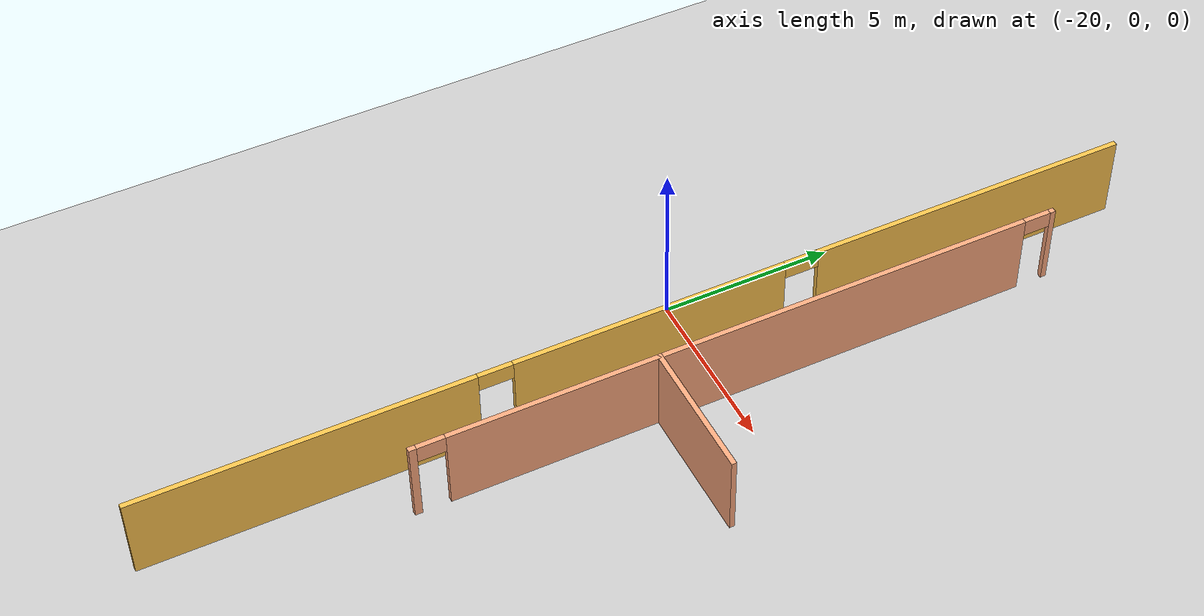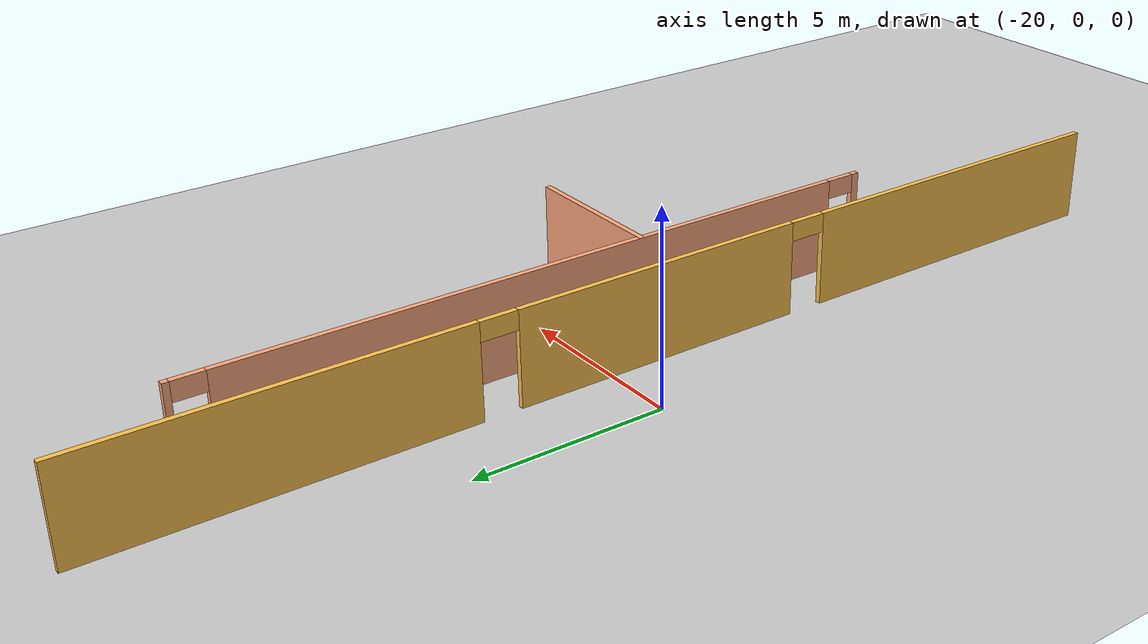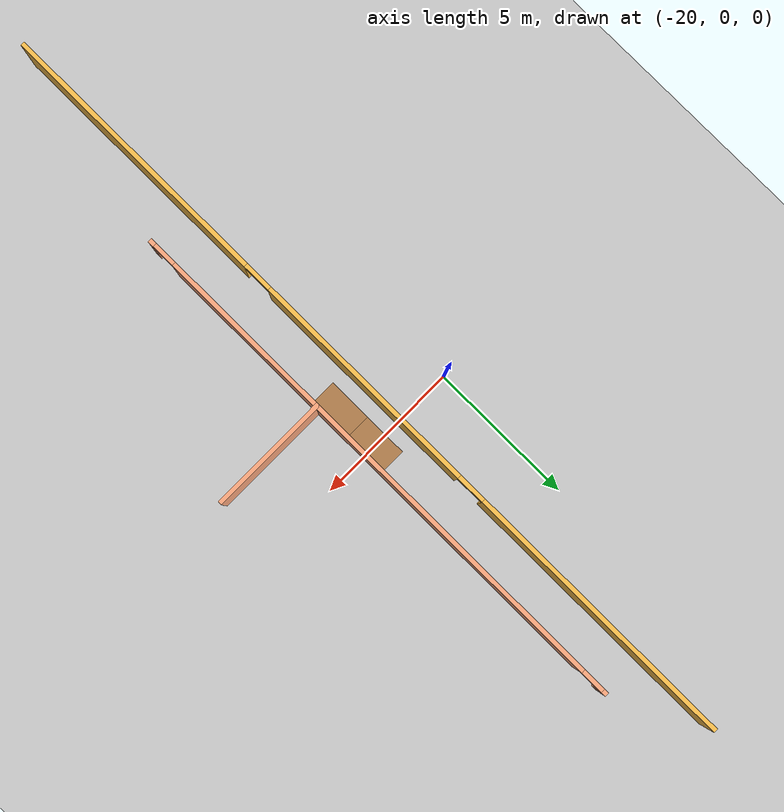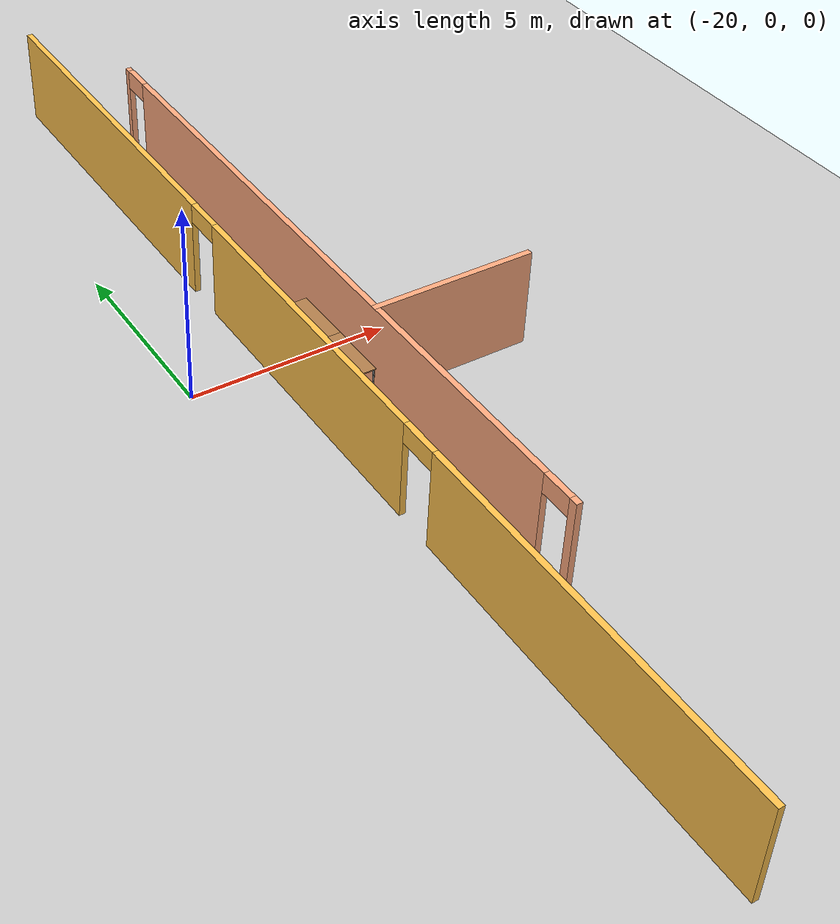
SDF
<sdf version="1.6">
 <world name="default">
  <model name="ground_plane">
   <static>1</static>
   <link name="link">
    <collision name="collision">
     <geometry><plane><normal>0 0 1</normal><size>100 100</size></plane></geometry>
     <surface><friction><ode><mu>100</mu><mu2>50</mu2></ode></friction></surface>
    </collision>
    <visual name="visual">
     <cast_shadows>0</cast_shadows>
     <geometry><plane><normal>0 0 1</normal><size>100 100</size></plane></geometry>
     <material>
      <script><uri>file://media/materials/scripts/gazebo.material</uri><name>Gazebo/Grey</name></script>
     </material>
    </visual>
   </link>
  </model>
  <model name="myWorld">
   <pose>-1.5 0 0 0 -0 0</pose>
   <link name="Wall_10">
    <pose>-16.5 -1.5 0 0 0 -1.5708</pose>
    <visual name="Wall_10_Visual_0">
     <pose>-9.7875 0 1.25 0 -0 0</pose>
     <geometry><box><size>9.575 0.15 2.5</size></box></geometry>
     <material>
      <script><uri>file://media/materials/scripts/gazebo.material</uri><name>Gazebo/Grey</name></script>
      <ambient>1 0.764706 0.305882 1</ambient>
     </material>
     <meta><layer>0</layer></meta>
    </visual>
    <collision name="Wall_10_Collision_0">
     <geometry><box><size>9.575 0.15 2.5</size></box></geometry>
     <pose>-9.7875 0 1.25 0 -0 0</pose>
    </collision>
    <visual name="Wall_10_Visual_1">
     <pose>0 0 1.25 0 -0 0</pose>
     <geometry><box><size>8 0.15 2.5</size></box></geometry>
     <material>
      <script><uri>file://media/materials/scripts/gazebo.material</uri><name>Gazebo/Grey</name></script>
      <ambient>1 0.764706 0.305882 1</ambient>
     </material>
     <meta><layer>0</layer></meta>
    </visual>
    <collision name="Wall_10_Collision_1">
     <geometry><box><size>8 0.15 2.5</size></box></geometry>
     <pose>0 0 1.25 0 -0 0</pose>
    </collision>
    <visual name="Wall_10_Visual_2">
     <pose>9.7875 0 1.25 0 -0 0</pose>
     <geometry><box><size>9.575 0.15 2.5</size></box></geometry>
     <material>
      <script><uri>file://media/materials/scripts/gazebo.material</uri><name>Gazebo/Grey</name></script>
      <ambient>1 0.764706 0.305882 1</ambient>
     </material>
     <meta><layer>0</layer></meta>
    </visual>
    <collision name="Wall_10_Collision_2">
     <geometry><box><size>9.575 0.15 2.5</size></box></geometry>
     <pose>9.7875 0 1.25 0 -0 0</pose>
    </collision>
    <visual name="Wall_10_Visual_3">
     <pose>-4.5 0 2.25 0 -0 0</pose>
     <geometry><box><size>1 0.15 0.5</size></box></geometry>
     <material>
      <script><uri>file://media/materials/scripts/gazebo.material</uri><name>Gazebo/Grey</name></script>
      <ambient>1 0.764706 0.305882 1</ambient>
     </material>
     <meta><layer>0</layer></meta>
    </visual>
    <collision name="Wall_10_Collision_3">
     <geometry><box><size>1 0.15 0.5</size></box></geometry>
     <pose>-4.5 0 2.25 0 -0 0</pose>
    </collision>
    <visual name="Wall_10_Visual_4">
     <pose>4.5 0 2.25 0 -0 0</pose>
     <geometry><box><size>1 0.15 0.5</size></box></geometry>
     <material>
      <script><uri>file://media/materials/scripts/gazebo.material</uri><name>Gazebo/Grey</name></script>
      <ambient>1 0.764706 0.305882 1</ambient>
     </material>
     <meta><layer>0</layer></meta>
    </visual>
    <collision name="Wall_10_Collision_4">
     <geometry><box><size>1 0.15 0.5</size></box></geometry>
     <pose>4.5 0 2.25 0 -0 0</pose>
    </collision>
   </link>
   <link name="Wall_14">
    <pose>-15 0.5 0 0 0 -1.5708</pose>
    <visual name="Wall_14_Visual_0">
     <pose>-9.4925 0 1.25 0 -0 0</pose>
     <geometry><box><size>0.165 0.15 2.5</size></box></geometry>
     <material>
      <script><uri>file://media/materials/scripts/gazebo.material</uri><name>Gazebo/Grey</name></script>
      <ambient>1 0.666667 0.498039 1</ambient>
     </material>
     <meta><layer>0</layer></meta>
    </visual>
    <collision name="Wall_14_Collision_0">
     <geometry><box><size>0.165 0.15 2.5</size></box></geometry>
     <pose>-9.4925 0 1.25 0 -0 0</pose>
    </collision>
    <visual name="Wall_14_Visual_1">
     <pose>-0.025 0 1.25 0 -0 0</pose>
     <geometry><box><size>17.17 0.15 2.5</size></box></geometry>
     <material>
      <script><uri>file://media/materials/scripts/gazebo.material</uri><name>Gazebo/Grey</name></script>
      <ambient>1 0.666667 0.498039 1</ambient>
     </material>
     <meta><layer>0</layer></meta>
    </visual>
    <collision name="Wall_14_Collision_1">
     <geometry><box><size>17.17 0.15 2.5</size></box></geometry>
     <pose>-0.025 0 1.25 0 -0 0</pose>
    </collision>
    <visual name="Wall_14_Visual_2">
     <pose>9.4675 0 1.25 0 -0 0</pose>
     <geometry><box><size>0.215 0.15 2.5</size></box></geometry>
     <material>
      <script><uri>file://media/materials/scripts/gazebo.material</uri><name>Gazebo/Grey</name></script>
      <ambient>1 0.666667 0.498039 1</ambient>
     </material>
     <meta><layer>0</layer></meta>
    </visual>
    <collision name="Wall_14_Collision_2">
     <geometry><box><size>0.215 0.15 2.5</size></box></geometry>
     <pose>9.4675 0 1.25 0 -0 0</pose>
    </collision>
    <visual name="Wall_14_Visual_3">
     <pose>-9.01 0 2.25 0 -0 0</pose>
     <geometry><box><size>0.8 0.15 0.5</size></box></geometry>
     <material>
      <script><uri>file://media/materials/scripts/gazebo.material</uri><name>Gazebo/Grey</name></script>
      <ambient>1 0.666667 0.498039 1</ambient>
     </material>
     <meta><layer>0</layer></meta>
    </visual>
    <collision name="Wall_14_Collision_3">
     <geometry><box><size>0.8 0.15 0.5</size></box></geometry>
     <pose>-9.01 0 2.25 0 -0 0</pose>
    </collision>
    <visual name="Wall_14_Visual_4">
     <pose>8.96 0 2.25 0 -0 0</pose>
     <geometry><box><size>0.8 0.15 0.5</size></box></geometry>
     <material>
      <script><uri>file://media/materials/scripts/gazebo.material</uri><name>Gazebo/Grey</name></script>
      <ambient>1 0.666667 0.498039 1</ambient>
     </material>
     <meta><layer>0</layer></meta>
    </visual>
    <collision name="Wall_14_Collision_4">
     <geometry><box><size>0.8 0.15 0.5</size></box></geometry>
     <pose>8.96 0 2.25 0 -0 0</pose>
    </collision>
   </link>
   <link name="Wall_28">
    <collision name="Wall_28_Collision">
     <geometry><box><size>4.15 0.15 2.5</size></box></geometry>
     <pose>0 0 1.25 0 -0 0</pose>
    </collision>
    <visual name="Wall_28_Visual">
     <pose>0 0 1.25 0 -0 0</pose>
     <geometry><box><size>4.15 0.15 2.5</size></box></geometry>
     <material>
      <script><uri>file://media/materials/scripts/gazebo.material</uri><name>Gazebo/Grey</name></script>
      <ambient>1 0.666667 0.498039 1</ambient>
     </material>
     <meta><layer>0</layer></meta>
    </visual>
    <pose>-13 -2 0 0 -0 0</pose>
   </link>
   <static>1</static>
  </model>
  <model name="table_3">
   <static>1</static>
   <link name="link">
    <collision name="surface">
     <pose>0 0 1 0 -0 0</pose>
     <geometry><box><size>1.5 0.8 0.03</size></box></geometry>
     <surface><friction><ode><mu>0.6</mu><mu2>0.6</mu2></ode></friction></surface>
    </collision>
    <visual name="visual1">
     <pose>0 0 1 0 -0 0</pose>
     <geometry><box><size>1.5 0.8 0.03</size></box></geometry>
     <material>
      <script><uri>file://media/materials/scripts/gazebo.material</uri><name>Gazebo/Wood</name></script>
     </material>
    </visual>
    <collision name="front_left_leg">
     <pose>0.68 0.38 0.5 0 -0 0</pose>
     <geometry><cylinder><radius>0.02</radius><length>1</length></cylinder></geometry>
    </collision>
    <visual name="front_left_leg">
     <pose>0.68 0.38 0.5 0 -0 0</pose>
     <geometry><cylinder><radius>0.02</radius><length>1</length></cylinder></geometry>
     <material>
      <script><uri>file://media/materials/scripts/gazebo.material</uri><name>Gazebo/Grey</name></script>
     </material>
    </visual>
    <collision name="front_right_leg">
     <pose>0.68 -0.38 0.5 0 -0 0</pose>
     <geometry><cylinder><radius>0.02</radius><length>1</length></cylinder></geometry>
    </collision>
    <visual name="front_right_leg">
     <pose>0.68 -0.38 0.5 0 -0 0</pose>
     <geometry><cylinder><radius>0.02</radius><length>1</length></cylinder></geometry>
     <material>
      <script><uri>file://media/materials/scripts/gazebo.material</uri><name>Gazebo/Grey</name></script>
     </material>
    </visual>
    <collision name="back_right_leg">
     <pose>-0.68 -0.38 0.5 0 -0 0</pose>
     <geometry><cylinder><radius>0.02</radius><length>1</length></cylinder></geometry>
    </collision>
    <visual name="back_right_leg">
     <pose>-0.68 -0.38 0.5 0 -0 0</pose>
     <geometry><cylinder><radius>0.02</radius><length>1</length></cylinder></geometry>
     <material>
      <script><uri>file://media/materials/scripts/gazebo.material</uri><name>Gazebo/Grey</name></script>
     </material>
    </visual>
    <collision name="back_left_leg">
     <pose>-0.68 0.38 0.5 0 -0 0</pose>
     <geometry><cylinder><radius>0.02</radius><length>1</length></cylinder></geometry>
    </collision>
    <visual name="back_left_leg">
     <pose>-0.68 0.38 0.5 0 -0 0</pose>
     <geometry><cylinder><radius>0.02</radius><length>1</length></cylinder></geometry>
     <material>
      <script><uri>file://media/materials/scripts/gazebo.material</uri><name>Gazebo/Grey</name></script>
     </material>
    </visual>
   </link>
   <pose>-17 0 0 0 -0 1.5708</pose>
  </model>
  <model name="table_5">
   <static>1</static>
   <link name="link">
    <collision name="surface">
     <pose>0 0 1 0 -0 0</pose>
     <geometry><box><size>1.5 0.8 0.03</size></box></geometry>
     <surface><friction><ode><mu>0.6</mu><mu2>0.6</mu2></ode></friction></surface>
    </collision>
    <visual name="visual1">
     <pose>0 0 1 0 -0 0</pose>
     <geometry><box><size>1.5 0.8 0.03</size></box></geometry>
     <material>
      <script><uri>file://media/materials/scripts/gazebo.material</uri><name>Gazebo/Wood</name></script>
     </material>
    </visual>
    <collision name="front_left_leg">
     <pose>0.68 0.38 0.5 0 -0 0</pose>
     <geometry><cylinder><radius>0.02</radius><length>1</length></cylinder></geometry>
    </collision>
    <visual name="front_left_leg">
     <pose>0.68 0.38 0.5 0 -0 0</pose>
     <geometry><cylinder><radius>0.02</radius><length>1</length></cylinder></geometry>
     <material>
      <script><uri>file://media/materials/scripts/gazebo.material</uri><name>Gazebo/Grey</name></script>
     </material>
    </visual>
    <collision name="front_right_leg">
     <pose>0.68 -0.38 0.5 0 -0 0</pose>
     <geometry><cylinder><radius>0.02</radius><length>1</length></cylinder></geometry>
    </collision>
    <visual name="front_right_leg">
     <pose>0.68 -0.38 0.5 0 -0 0</pose>
     <geometry><cylinder><radius>0.02</radius><length>1</length></cylinder></geometry>
     <material>
      <script><uri>file://media/materials/scripts/gazebo.material</uri><name>Gazebo/Grey</name></script>
     </material>
    </visual>
    <collision name="back_right_leg">
     <pose>-0.68 -0.38 0.5 0 -0 0</pose>
     <geometry><cylinder><radius>0.02</radius><length>1</length></cylinder></geometry>
    </collision>
    <visual name="back_right_leg">
     <pose>-0.68 -0.38 0.5 0 -0 0</pose>
     <geometry><cylinder><radius>0.02</radius><length>1</length></cylinder></geometry>
     <material>
      <script><uri>file://media/materials/scripts/gazebo.material</uri><name>Gazebo/Grey</name></script>
     </material>
    </visual>
    <collision name="back_left_leg">
     <pose>-0.68 0.38 0.5 0 -0 0</pose>
     <geometry><cylinder><radius>0.02</radius><length>1</length></cylinder></geometry>
    </collision>
    <visual name="back_left_leg">
     <pose>-0.68 0.38 0.5 0 -0 0</pose>
     <geometry><cylinder><radius>0.02</radius><length>1</length></cylinder></geometry>
     <material>
      <script><uri>file://media/materials/scripts/gazebo.material</uri><name>Gazebo/Grey</name></script>
     </material>
    </visual>
   </link>
   <pose>-17 -1.5 0 0 -0 1.5708</pose>
  </model>
 </world>
</sdf>
